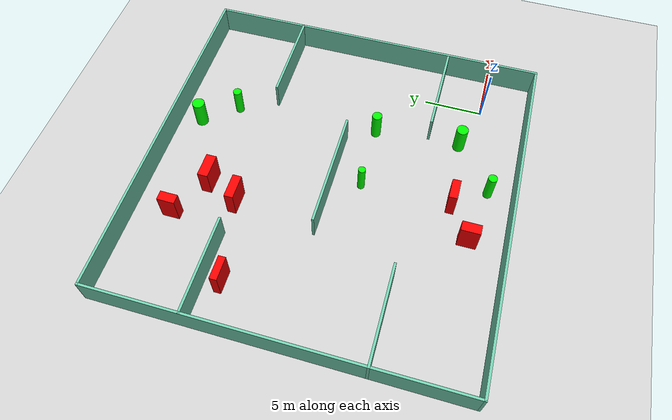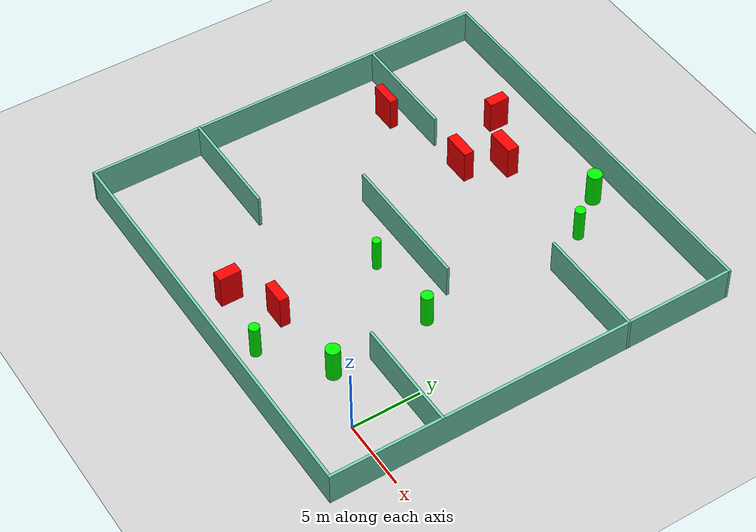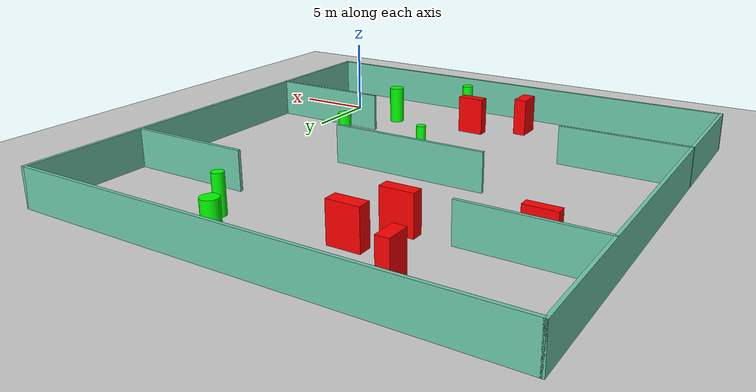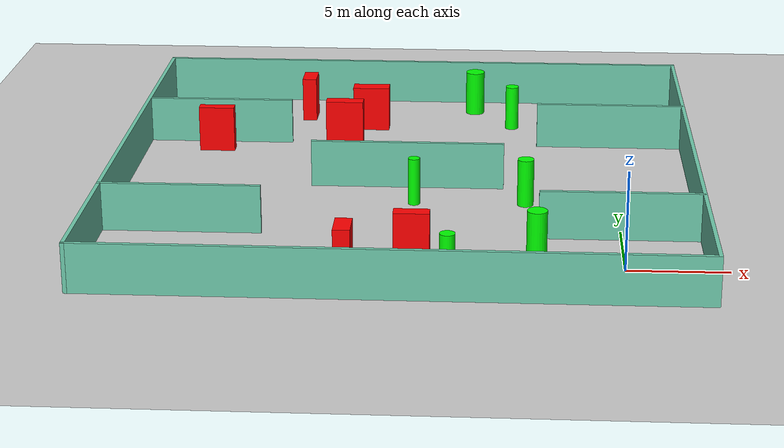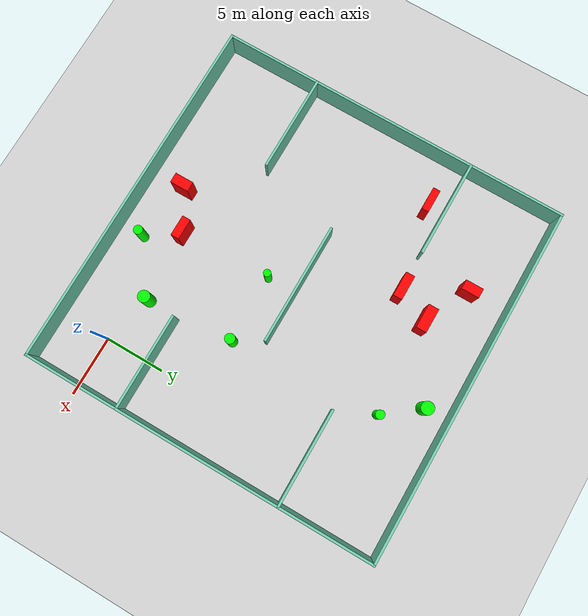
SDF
<sdf version="1.7">
 <world name="default">
  <light name="sun" type="directional">
   <pose>0 0 10 0 -0 0</pose>
   <diffuse>0.8 0.8 0.8 1</diffuse>
   <specular>0.2 0.2 0.2 1</specular>
   <attenuation>
    <range>1000</range>
    <constant>0.9</constant>
    <linear>0.01</linear>
    <quadratic>0.001</quadratic>
   </attenuation>
   <direction>-0.5 0.1 -0.9</direction>
   <spot><inner_angle>0</inner_angle><outer_angle>0</outer_angle><falloff>0</falloff></spot>
  </light>
  <model name="ground_plane">
   <static>1</static>
   <link name="link">
    <collision name="collision">
     <geometry><plane><normal>0 0 1</normal><size>100 100</size></plane></geometry>
     <surface>
      <contact><collide_bitmask>65535</collide_bitmask></contact>
      <friction><ode><mu>100</mu><mu2>50</mu2></ode></friction>
     </surface>
    </collision>
    <visual name="visual">
     <cast_shadows>0</cast_shadows>
     <geometry><plane><normal>0 0 1</normal><size>100 100</size></plane></geometry>
     <material>
      <script><uri>file://media/materials/scripts/gazebo.material</uri><name>Gazebo/Grey</name></script>
     </material>
    </visual>
   </link>
  </model>
  <gravity>0 0 -9.8</gravity>
  <magnetic_field>6e-06 2.3e-05 -4.2e-05</magnetic_field>
  <atmosphere type="adiabatic"/>
  <physics type="ode">
   <max_step_size>0.001</max_step_size>
   <real_time_factor>1</real_time_factor>
   <real_time_update_rate>1000</real_time_update_rate>
  </physics>
  <scene><ambient>0.4 0.4 0.4 1</ambient><background>0.7 0.7 0.7 1</background><shadows>1</shadows></scene>
  <spherical_coordinates>
   <surface_model>EARTH_WGS84</surface_model>
   <latitude_deg>0</latitude_deg>
   <longitude_deg>0</longitude_deg>
   <elevation>0</elevation>
   <heading_deg>0</heading_deg>
  </spherical_coordinates>
  <model name="my_base_walls">
   <link name="Wall_10">
    <collision name="Wall_10_Collision">
     <geometry><box><size>8.2 0.2 2.5</size></box></geometry>
     <pose>0 0 1.25 0 -0 0</pose>
    </collision>
    <visual name="Wall_10_Visual">
     <pose>0 0 1.25 0 -0 0</pose>
     <geometry><box><size>8.2 0.2 2.5</size></box></geometry>
     <material>
      <script><uri>file://media/materials/scripts/gazebo.material</uri><name>Gazebo/Grey</name></script>
      <ambient>0.435294 0.796078 0.67451 1</ambient>
     </material>
     <meta><layer>0</layer></meta>
    </visual>
    <pose>-11 -7 0 0 -0 0</pose>
   </link>
   <link name="Wall_12">
    <collision name="Wall_12_Collision">
     <geometry><box><size>8.2 0.2 2.5</size></box></geometry>
     <pose>0 0 1.25 0 -0 0</pose>
    </collision>
    <visual name="Wall_12_Visual">
     <pose>0 0 1.25 0 -0 0</pose>
     <geometry><box><size>8.2 0.2 2.5</size></box></geometry>
     <material>
      <script><uri>file://media/materials/scripts/gazebo.material</uri><name>Gazebo/Grey</name></script>
      <ambient>0.435294 0.796078 0.67451 1</ambient>
     </material>
     <meta><layer>0</layer></meta>
    </visual>
    <pose>-11 7 0 0 -0 0</pose>
   </link>
   <link name="Wall_14">
    <collision name="Wall_14_Collision">
     <geometry><box><size>8.2 0.2 2.5</size></box></geometry>
     <pose>0 0 1.25 0 -0 0</pose>
    </collision>
    <visual name="Wall_14_Visual">
     <pose>0 0 1.25 0 -0 0</pose>
     <geometry><box><size>8.2 0.2 2.5</size></box></geometry>
     <material>
      <script><uri>file://media/materials/scripts/gazebo.material</uri><name>Gazebo/Grey</name></script>
      <ambient>0.435294 0.796078 0.67451 1</ambient>
     </material>
     <meta><layer>0</layer></meta>
    </visual>
    <pose>11 7 0 0 -0 3.14159</pose>
   </link>
   <link name="Wall_16">
    <collision name="Wall_16_Collision">
     <geometry><box><size>10.2 0.2 2.5</size></box></geometry>
     <pose>0 0 1.25 0 -0 0</pose>
    </collision>
    <visual name="Wall_16_Visual">
     <pose>0 0 1.25 0 -0 0</pose>
     <geometry><box><size>10.2 0.2 2.5</size></box></geometry>
     <material>
      <script><uri>file://media/materials/scripts/gazebo.material</uri><name>Gazebo/Grey</name></script>
      <ambient>0.435294 0.796078 0.67451 1</ambient>
     </material>
     <meta><layer>0</layer></meta>
    </visual>
    <pose>0 0 0 0 -0 3.14159</pose>
   </link>
   <link name="Wall_2">
    <collision name="Wall_2_Collision">
     <geometry><box><size>30.2 0.2 2.5</size></box></geometry>
     <pose>0 0 1.25 0 -0 0</pose>
    </collision>
    <visual name="Wall_2_Visual">
     <pose>0 0 1.25 0 -0 0</pose>
     <geometry><box><size>30.2 0.2 2.5</size></box></geometry>
     <material>
      <script><uri>file://media/materials/scripts/gazebo.material</uri><name>Gazebo/Grey</name></script>
      <ambient>0.435294 0.796078 0.67451 1</ambient>
     </material>
     <meta><layer>0</layer></meta>
    </visual>
    <pose>0 -15 0 0 -0 3.14159</pose>
   </link>
   <link name="Wall_3">
    <collision name="Wall_3_Collision">
     <geometry><box><size>30.2 0.2 2.5</size></box></geometry>
     <pose>0 0 1.25 0 -0 0</pose>
    </collision>
    <visual name="Wall_3_Visual">
     <pose>0 0 1.25 0 -0 0</pose>
     <geometry><box><size>30.2 0.2 2.5</size></box></geometry>
     <material>
      <script><uri>file://media/materials/scripts/gazebo.material</uri><name>Gazebo/Grey</name></script>
      <ambient>0.435294 0.796078 0.67451 1</ambient>
     </material>
     <meta><layer>0</layer></meta>
    </visual>
    <pose>-15 0 0 0 -0 1.5708</pose>
   </link>
   <link name="Wall_4">
    <collision name="Wall_4_Collision">
     <geometry><box><size>30.2 0.2 2.5</size></box></geometry>
     <pose>0 0 1.25 0 -0 0</pose>
    </collision>
    <visual name="Wall_4_Visual">
     <pose>0 0 1.25 0 -0 0</pose>
     <geometry><box><size>30.2 0.2 2.5</size></box></geometry>
     <material>
      <script><uri>file://media/materials/scripts/gazebo.material</uri><name>Gazebo/Grey</name></script>
      <ambient>0.435294 0.796078 0.67451 1</ambient>
     </material>
     <meta><layer>0</layer></meta>
    </visual>
    <pose>0 15 0 0 -0 0</pose>
   </link>
   <link name="Wall_6">
    <collision name="Wall_6_Collision">
     <geometry><box><size>30.2 0.2 2.5</size></box></geometry>
     <pose>0 0 1.25 0 -0 0</pose>
    </collision>
    <visual name="Wall_6_Visual">
     <pose>0 0 1.25 0 -0 0</pose>
     <geometry><box><size>30.2 0.2 2.5</size></box></geometry>
     <material>
      <script><uri>file://media/materials/scripts/gazebo.material</uri><name>Gazebo/Grey</name></script>
      <ambient>0.435294 0.796078 0.67451 1</ambient>
     </material>
     <meta><layer>0</layer></meta>
    </visual>
    <pose>15 0 0 0 -0 1.5708</pose>
   </link>
   <link name="Wall_8">
    <collision name="Wall_8_Collision">
     <geometry><box><size>8.2 0.2 2.5</size></box></geometry>
     <pose>0 0 1.25 0 -0 0</pose>
    </collision>
    <visual name="Wall_8_Visual">
     <pose>0 0 1.25 0 -0 0</pose>
     <geometry><box><size>8.2 0.2 2.5</size></box></geometry>
     <material>
      <script><uri>file://media/materials/scripts/gazebo.material</uri><name>Gazebo/Grey</name></script>
      <ambient>0.435294 0.796078 0.67451 1</ambient>
     </material>
     <meta><layer>0</layer></meta>
    </visual>
    <pose>11 -7 0 0 -0 3.14159</pose>
   </link>
   <static>1</static>
   <pose>-11 11 0 0 -0 0</pose>
  </model>
  <model name="cylinder1">
   <static>1</static>
   <link name="link">
    <inertial>
     <mass>1</mass>
     <inertia><ixx>0.5</ixx><ixy>0</ixy><ixz>0</ixz><iyy>0.5</iyy><iyz>0</iyz><izz>1</izz></inertia>
    </inertial>
    <collision name="collision">
     <geometry><cylinder><radius>0.42244689815064107</radius><length>2.5</length></cylinder></geometry>
    </collision>
    <visual name="visual">
     <geometry><cylinder><radius>0.42244689815064107</radius><length>2.5</length></cylinder></geometry>
     <material>
      <ambient>0 1 0 1</ambient>
      <diffuse>0 1 0 1</diffuse>
      <specular>0.1 0.1 0.1 1</specular>
      <emissive>0 0 0 0</emissive>
     </material>
    </visual>
   </link>
   <pose>-4.745656154407882 8.625612599582352 1.25 0 0 0</pose>
  </model>
  <model name="cylinder2">
   <static>1</static>
   <link name="link">
    <inertial>
     <mass>1</mass>
     <inertia><ixx>0.5</ixx><ixy>0</ixy><ixz>0</ixz><iyy>0.5</iyy><iyz>0</iyz><izz>1</izz></inertia>
    </inertial>
    <collision name="collision">
     <geometry><cylinder><radius>0.49752856985543137</radius><length>2.5</length></cylinder></geometry>
    </collision>
    <visual name="visual">
     <geometry><cylinder><radius>0.49752856985543137</radius><length>2.5</length></cylinder></geometry>
     <material>
      <ambient>0 1 0 1</ambient>
      <diffuse>0 1 0 1</diffuse>
      <specular>0.1 0.1 0.1 1</specular>
      <emissive>0 0 0 0</emissive>
     </material>
    </visual>
   </link>
   <pose>-4.214703253869613 1.2800413103849557 1.25 0 0 0</pose>
  </model>
  <model name="cylinder3">
   <static>1</static>
   <link name="link">
    <inertial>
     <mass>1</mass>
     <inertia><ixx>0.5</ixx><ixy>0</ixy><ixz>0</ixz><iyy>0.5</iyy><iyz>0</iyz><izz>1</izz></inertia>
    </inertial>
    <collision name="collision">
     <geometry><cylinder><radius>0.3747199550302652</radius><length>2.5</length></cylinder></geometry>
    </collision>
    <visual name="visual">
     <geometry><cylinder><radius>0.3747199550302652</radius><length>2.5</length></cylinder></geometry>
     <material>
      <ambient>0 1 0 1</ambient>
      <diffuse>0 1 0 1</diffuse>
      <specular>0.1 0.1 0.1 1</specular>
      <emissive>0 0 0 0</emissive>
     </material>
    </visual>
   </link>
   <pose>-8.416190718435354 -1.9064761127918124 1.25 0 0 0</pose>
  </model>
  <model name="cylinder4">
   <static>1</static>
   <link name="link">
    <inertial>
     <mass>1</mass>
     <inertia><ixx>0.5</ixx><ixy>0</ixy><ixz>0</ixz><iyy>0.5</iyy><iyz>0</iyz><izz>1</izz></inertia>
    </inertial>
    <collision name="collision">
     <geometry><cylinder><radius>0.30587579470518095</radius><length>2.5</length></cylinder></geometry>
    </collision>
    <visual name="visual">
     <geometry><cylinder><radius>0.30587579470518095</radius><length>2.5</length></cylinder></geometry>
     <material>
      <ambient>0 1 0 1</ambient>
      <diffuse>0 1 0 1</diffuse>
      <specular>0.1 0.1 0.1 1</specular>
      <emissive>0 0 0 0</emissive>
     </material>
    </visual>
   </link>
   <pose>-10.511821985242113 8.492537288952228 1.25 0 0 0</pose>
  </model>
  <model name="cylinder5">
   <static>1</static>
   <link name="link">
    <inertial>
     <mass>1</mass>
     <inertia><ixx>0.5</ixx><ixy>0</ixy><ixz>0</ixz><iyy>0.5</iyy><iyz>0</iyz><izz>1</izz></inertia>
    </inertial>
    <collision name="collision">
     <geometry><cylinder><radius>0.5309798251380778</radius><length>2.5</length></cylinder></geometry>
    </collision>
    <visual name="visual">
     <geometry><cylinder><radius>0.5309798251380778</radius><length>2.5</length></cylinder></geometry>
     <material>
      <ambient>0 1 0 1</ambient>
      <diffuse>0 1 0 1</diffuse>
      <specular>0.1 0.1 0.1 1</specular>
      <emissive>0 0 0 0</emissive>
     </material>
    </visual>
   </link>
   <pose>-7.704834373209744 24.012423873447975 1.25 0 0 0</pose>
  </model>
  <model name="cylinder6">
   <static>1</static>
   <link name="link">
    <inertial>
     <mass>1</mass>
     <inertia><ixx>0.5</ixx><ixy>0</ixy><ixz>0</ixz><iyy>0.5</iyy><iyz>0</iyz><izz>1</izz></inertia>
    </inertial>
    <collision name="collision">
     <geometry><cylinder><radius>0.36736335404595777</radius><length>2.5</length></cylinder></geometry>
    </collision>
    <visual name="visual">
     <geometry><cylinder><radius>0.36736335404595777</radius><length>2.5</length></cylinder></geometry>
     <material>
      <ambient>0 1 0 1</ambient>
      <diffuse>0 1 0 1</diffuse>
      <specular>0.1 0.1 0.1 1</specular>
      <emissive>0 0 0 0</emissive>
     </material>
    </visual>
   </link>
   <pose>-5.5142885576989435 21.19540247071061 1.25 0 0 0</pose>
  </model>
  <model name="box1">
   <static>1</static>
   <link name="link">
    <inertial>
     <mass>1</mass>
     <inertia><ixx>0.083</ixx><ixy>0</ixy><ixz>0</ixz><iyy>0.083</iyy><iyz>0</iyz><izz>0.083</izz></inertia>
    </inertial>
    <collision name="collision">
     <geometry><box><size>2.049565846310494 0.8711824881784895 2.5</size></box></geometry>
    </collision>
    <visual name="visual">
     <geometry><box><size>2.049565846310494 0.8711824881784895 2.5</size></box></geometry>
     <material>
      <ambient>1 0 0 1</ambient>
      <diffuse>1 0 0 1</diffuse>
      <specular>0.1 0.1 0.1 1</specular>
      <emissive>0 0 0 0</emissive>
     </material>
    </visual>
    <sensor name="my_contact" type="contact">
     <contact><collision>box_collision</collision><topic>__default_topic__</topic></contact>
    </sensor>
   </link>
   <pose>-13.617107317808916 20.80379810553394 1.25 0 0 0</pose>
  </model>
  <model name="box2">
   <static>1</static>
   <link name="link">
    <inertial>
     <mass>1</mass>
     <inertia><ixx>0.083</ixx><ixy>0</ixy><ixz>0</ixz><iyy>0.083</iyy><iyz>0</iyz><izz>0.083</izz></inertia>
    </inertial>
    <collision name="collision">
     <geometry><box><size>2.0786218638541696 0.7542207432373736 2.5</size></box></geometry>
    </collision>
    <visual name="visual">
     <geometry><box><size>2.0786218638541696 0.7542207432373736 2.5</size></box></geometry>
     <material>
      <ambient>1 0 0 1</ambient>
      <diffuse>1 0 0 1</diffuse>
      <specular>0.1 0.1 0.1 1</specular>
      <emissive>0 0 0 0</emissive>
     </material>
    </visual>
    <sensor name="my_contact" type="contact">
     <contact><collision>box_collision</collision><topic>__default_topic__</topic></contact>
    </sensor>
   </link>
   <pose>-14.923880563285266 18.061427426508367 1.25 0 0 0</pose>
  </model>
  <model name="box3">
   <static>1</static>
   <link name="link">
    <inertial>
     <mass>1</mass>
     <inertia><ixx>0.083</ixx><ixy>0</ixy><ixz>0</ixz><iyy>0.083</iyy><iyz>0</iyz><izz>0.083</izz></inertia>
    </inertial>
    <collision name="collision">
     <geometry><box><size>0.8354112032523393 1.5826559372534899 2.5</size></box></geometry>
    </collision>
    <visual name="visual">
     <geometry><box><size>0.8354112032523393 1.5826559372534899 2.5</size></box></geometry>
     <material>
      <ambient>1 0 0 1</ambient>
      <diffuse>1 0 0 1</diffuse>
      <specular>0.1 0.1 0.1 1</specular>
      <emissive>0 0 0 0</emissive>
     </material>
    </visual>
    <sensor name="my_contact" type="contact">
     <contact><collision>box_collision</collision><topic>__default_topic__</topic></contact>
    </sensor>
   </link>
   <pose>-13.382014589745014 -0.9972582168653168 1.25 0 0 0</pose>
  </model>
  <model name="box4">
   <static>1</static>
   <link name="link">
    <inertial>
     <mass>1</mass>
     <inertia><ixx>0.083</ixx><ixy>0</ixy><ixz>0</ixz><iyy>0.083</iyy><iyz>0</iyz><izz>0.083</izz></inertia>
    </inertial>
    <collision name="collision">
     <geometry><box><size>0.7928695294379283 1.4829907082733753 2.5</size></box></geometry>
    </collision>
    <visual name="visual">
     <geometry><box><size>0.7928695294379283 1.4829907082733753 2.5</size></box></geometry>
     <material>
      <ambient>1 0 0 1</ambient>
      <diffuse>1 0 0 1</diffuse>
      <specular>0.1 0.1 0.1 1</specular>
      <emissive>0 0 0 0</emissive>
     </material>
    </visual>
    <sensor name="my_contact" type="contact">
     <contact><collision>box_collision</collision><topic>__default_topic__</topic></contact>
    </sensor>
   </link>
   <pose>-17.34053343596897 22.69650407406293 1.25 0 0 0</pose>
  </model>
  <model name="box5">
   <static>1</static>
   <link name="link">
    <inertial>
     <mass>1</mass>
     <inertia><ixx>0.083</ixx><ixy>0</ixy><ixz>0</ixz><iyy>0.083</iyy><iyz>0</iyz><izz>0.083</izz></inertia>
    </inertial>
    <collision name="collision">
     <geometry><box><size>1.9456573089670444 0.6059043343817062 2.5</size></box></geometry>
    </collision>
    <visual name="visual">
     <geometry><box><size>1.9456573089670444 0.6059043343817062 2.5</size></box></geometry>
     <material>
      <ambient>1 0 0 1</ambient>
      <diffuse>1 0 0 1</diffuse>
      <specular>0.1 0.1 0.1 1</specular>
      <emissive>0 0 0 0</emissive>
     </material>
    </visual>
    <sensor name="my_contact" type="contact">
     <contact><collision>box_collision</collision><topic>__default_topic__</topic></contact>
    </sensor>
   </link>
   <pose>-21.961922948730567 16.590286068977107 1.25 0 0 0</pose>
  </model>
  <model name="box6">
   <static>1</static>
   <link name="link">
    <inertial>
     <mass>1</mass>
     <inertia><ixx>0.083</ixx><ixy>0</ixy><ixz>0</ixz><iyy>0.083</iyy><iyz>0</iyz><izz>0.083</izz></inertia>
    </inertial>
    <collision name="collision">
     <geometry><box><size>1.7614764126328313 0.6979499788509157 2.5</size></box></geometry>
    </collision>
    <visual name="visual">
     <geometry><box><size>1.7614764126328313 0.6979499788509157 2.5</size></box></geometry>
     <material>
      <ambient>1 0 0 1</ambient>
      <diffuse>1 0 0 1</diffuse>
      <specular>0.1 0.1 0.1 1</specular>
      <emissive>0 0 0 0</emissive>
     </material>
    </visual>
    <sensor name="my_contact" type="contact">
     <contact><collision>box_collision</collision><topic>__default_topic__</topic></contact>
    </sensor>
   </link>
   <pose>-10.233693443648487 0.8455606253623773 1.25 0 0 0</pose>
  </model>
 </world>
</sdf>
